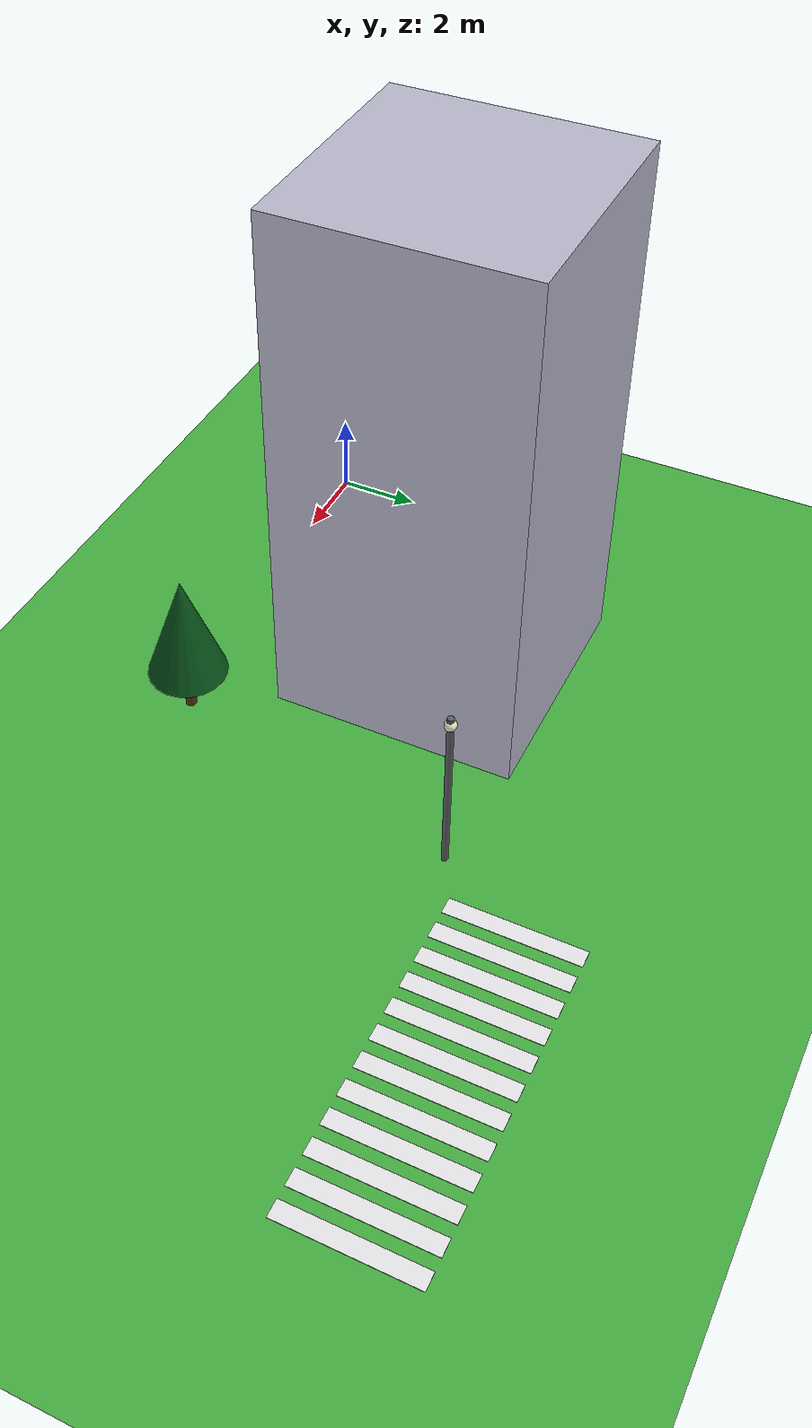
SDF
<sdf version="1.10">
 <world name="city_second">
  <model name="ground_plane">
   <static>true</static>
   <link name="link">
    <collision name="collision">
     <geometry><plane><normal>0 0 1</normal><size>300 300</size></plane></geometry>
    </collision>
    <visual name="visual">
     <geometry><plane><normal>0 0 1</normal><size>300 300</size></plane></geometry>
     <material>
      <ambient>0.280000001 0.689999998 0.25999999 1</ambient>
      <diffuse>0.280000001 0.689999998 0.25999999 1</diffuse>
      <specular>0.0299999993 0.0299999993 0.0299999993 1</specular>
     </material>
    </visual>
    <inertial>
     <mass>1</mass>
     <inertia><ixx>1</ixx><ixy>0</ixy><ixz>0</ixz><iyy>1</iyy><iyz>0</iyz><izz>1</izz></inertia>
    </inertial>
   </link>
  </model>
  <model name="house_2_2">
   <static>true</static>
   <pose>5.2000000000000002 5.2999999999999998 6.5 0 0 0</pose>
   <link name="link">
    <collision name="collision"><geometry><box><size>6 6 13</size></box></geometry></collision>
    <visual name="visual">
     <geometry><box><size>6 6 13</size></box></geometry>
     <material>
      <ambient>0.720000029 0.720000029 0.800000012 1</ambient>
      <diffuse>0.720000029 0.720000029 0.800000012 1</diffuse>
      <specular>0.0299999993 0.0299999993 0.0299999993 1</specular>
     </material>
    </visual>
    <inertial>
     <mass>1</mass>
     <inertia><ixx>1</ixx><ixy>0</ixy><ixz>0</ixz><iyy>1</iyy><iyz>0</iyz><izz>1</izz></inertia>
    </inertial>
   </link>
  </model>
  <model name="crosswalk_h_1_1_south_6">
   <static>true</static>
   <pose>15.980700000000001 10.0922 0.017000000000000001 0 0 0</pose>
   <link name="stripe_1">
    <collision name="collision">
     <geometry><box><size>0.41999999999999998 3.2000000000000002 0.01</size></box></geometry>
    </collision>
    <visual name="visual">
     <geometry><box><size>0.41999999999999998 3.2000000000000002 0.01</size></box></geometry>
     <material>
      <ambient>0.920000017 0.920000017 0.930000007 1</ambient>
      <diffuse>0.920000017 0.920000017 0.930000007 1</diffuse>
      <specular>0.0299999993 0.0299999993 0.0299999993 1</specular>
     </material>
    </visual>
    <pose>-3.8500000000000001 0 0 0 0 0</pose>
    <inertial>
     <mass>1</mass>
     <inertia><ixx>1</ixx><ixy>0</ixy><ixz>0</ixz><iyy>1</iyy><iyz>0</iyz><izz>1</izz></inertia>
    </inertial>
   </link>
   <link name="stripe_2">
    <collision name="collision">
     <geometry><box><size>0.41999999999999998 3.2000000000000002 0.01</size></box></geometry>
    </collision>
    <visual name="visual">
     <geometry><box><size>0.41999999999999998 3.2000000000000002 0.01</size></box></geometry>
     <material>
      <ambient>0.920000017 0.920000017 0.930000007 1</ambient>
      <diffuse>0.920000017 0.920000017 0.930000007 1</diffuse>
      <specular>0.0299999993 0.0299999993 0.0299999993 1</specular>
     </material>
    </visual>
    <pose>-3.1500000000000004 0 0 0 0 0</pose>
    <inertial>
     <mass>1</mass>
     <inertia><ixx>1</ixx><ixy>0</ixy><ixz>0</ixz><iyy>1</iyy><iyz>0</iyz><izz>1</izz></inertia>
    </inertial>
   </link>
   <link name="stripe_3">
    <collision name="collision">
     <geometry><box><size>0.41999999999999998 3.2000000000000002 0.01</size></box></geometry>
    </collision>
    <visual name="visual">
     <geometry><box><size>0.41999999999999998 3.2000000000000002 0.01</size></box></geometry>
     <material>
      <ambient>0.920000017 0.920000017 0.930000007 1</ambient>
      <diffuse>0.920000017 0.920000017 0.930000007 1</diffuse>
      <specular>0.0299999993 0.0299999993 0.0299999993 1</specular>
     </material>
    </visual>
    <pose>-2.4500000000000011 0 0 0 0 0</pose>
    <inertial>
     <mass>1</mass>
     <inertia><ixx>1</ixx><ixy>0</ixy><ixz>0</ixz><iyy>1</iyy><iyz>0</iyz><izz>1</izz></inertia>
    </inertial>
   </link>
   <link name="stripe_4">
    <collision name="collision">
     <geometry><box><size>0.41999999999999998 3.2000000000000002 0.01</size></box></geometry>
    </collision>
    <visual name="visual">
     <geometry><box><size>0.41999999999999998 3.2000000000000002 0.01</size></box></geometry>
     <material>
      <ambient>0.920000017 0.920000017 0.930000007 1</ambient>
      <diffuse>0.920000017 0.920000017 0.930000007 1</diffuse>
      <specular>0.0299999993 0.0299999993 0.0299999993 1</specular>
     </material>
    </visual>
    <pose>-1.75 0 0 0 0 0</pose>
    <inertial>
     <mass>1</mass>
     <inertia><ixx>1</ixx><ixy>0</ixy><ixz>0</ixz><iyy>1</iyy><iyz>0</iyz><izz>1</izz></inertia>
    </inertial>
   </link>
   <link name="stripe_5">
    <collision name="collision">
     <geometry><box><size>0.41999999999999998 3.2000000000000002 0.01</size></box></geometry>
    </collision>
    <visual name="visual">
     <geometry><box><size>0.41999999999999998 3.2000000000000002 0.01</size></box></geometry>
     <material>
      <ambient>0.920000017 0.920000017 0.930000007 1</ambient>
      <diffuse>0.920000017 0.920000017 0.930000007 1</diffuse>
      <specular>0.0299999993 0.0299999993 0.0299999993 1</specular>
     </material>
    </visual>
    <pose>-1.0500000000000007 0 0 0 0 0</pose>
    <inertial>
     <mass>1</mass>
     <inertia><ixx>1</ixx><ixy>0</ixy><ixz>0</ixz><iyy>1</iyy><iyz>0</iyz><izz>1</izz></inertia>
    </inertial>
   </link>
   <link name="stripe_6">
    <collision name="collision">
     <geometry><box><size>0.41999999999999998 3.2000000000000002 0.01</size></box></geometry>
    </collision>
    <visual name="visual">
     <geometry><box><size>0.41999999999999998 3.2000000000000002 0.01</size></box></geometry>
     <material>
      <ambient>0.920000017 0.920000017 0.930000007 1</ambient>
      <diffuse>0.920000017 0.920000017 0.930000007 1</diffuse>
      <specular>0.0299999993 0.0299999993 0.0299999993 1</specular>
     </material>
    </visual>
    <pose>-0.34999999999999964 0 0 0 0 0</pose>
    <inertial>
     <mass>1</mass>
     <inertia><ixx>1</ixx><ixy>0</ixy><ixz>0</ixz><iyy>1</iyy><iyz>0</iyz><izz>1</izz></inertia>
    </inertial>
   </link>
   <link name="stripe_7">
    <collision name="collision">
     <geometry><box><size>0.41999999999999998 3.2000000000000002 0.01</size></box></geometry>
    </collision>
    <visual name="visual">
     <geometry><box><size>0.41999999999999998 3.2000000000000002 0.01</size></box></geometry>
     <material>
      <ambient>0.920000017 0.920000017 0.930000007 1</ambient>
      <diffuse>0.920000017 0.920000017 0.930000007 1</diffuse>
      <specular>0.0299999993 0.0299999993 0.0299999993 1</specular>
     </material>
    </visual>
    <pose>0.34999999999999964 0 0 0 0 0</pose>
    <inertial>
     <mass>1</mass>
     <inertia><ixx>1</ixx><ixy>0</ixy><ixz>0</ixz><iyy>1</iyy><iyz>0</iyz><izz>1</izz></inertia>
    </inertial>
   </link>
   <link name="stripe_8">
    <collision name="collision">
     <geometry><box><size>0.41999999999999998 3.2000000000000002 0.01</size></box></geometry>
    </collision>
    <visual name="visual">
     <geometry><box><size>0.41999999999999998 3.2000000000000002 0.01</size></box></geometry>
     <material>
      <ambient>0.920000017 0.920000017 0.930000007 1</ambient>
      <diffuse>0.920000017 0.920000017 0.930000007 1</diffuse>
      <specular>0.0299999993 0.0299999993 0.0299999993 1</specular>
     </material>
    </visual>
    <pose>1.0499999999999989 0 0 0 0 0</pose>
    <inertial>
     <mass>1</mass>
     <inertia><ixx>1</ixx><ixy>0</ixy><ixz>0</ixz><iyy>1</iyy><iyz>0</iyz><izz>1</izz></inertia>
    </inertial>
   </link>
   <link name="stripe_9">
    <collision name="collision">
     <geometry><box><size>0.41999999999999998 3.2000000000000002 0.01</size></box></geometry>
    </collision>
    <visual name="visual">
     <geometry><box><size>0.41999999999999998 3.2000000000000002 0.01</size></box></geometry>
     <material>
      <ambient>0.920000017 0.920000017 0.930000007 1</ambient>
      <diffuse>0.920000017 0.920000017 0.930000007 1</diffuse>
      <specular>0.0299999993 0.0299999993 0.0299999993 1</specular>
     </material>
    </visual>
    <pose>1.7499999999999982 0 0 0 0 0</pose>
    <inertial>
     <mass>1</mass>
     <inertia><ixx>1</ixx><ixy>0</ixy><ixz>0</ixz><iyy>1</iyy><iyz>0</iyz><izz>1</izz></inertia>
    </inertial>
   </link>
   <link name="stripe_10">
    <collision name="collision">
     <geometry><box><size>0.41999999999999998 3.2000000000000002 0.01</size></box></geometry>
    </collision>
    <visual name="visual">
     <geometry><box><size>0.41999999999999998 3.2000000000000002 0.01</size></box></geometry>
     <material>
      <ambient>0.920000017 0.920000017 0.930000007 1</ambient>
      <diffuse>0.920000017 0.920000017 0.930000007 1</diffuse>
      <specular>0.0299999993 0.0299999993 0.0299999993 1</specular>
     </material>
    </visual>
    <pose>2.4500000000000011 0 0 0 0 0</pose>
    <inertial>
     <mass>1</mass>
     <inertia><ixx>1</ixx><ixy>0</ixy><ixz>0</ixz><iyy>1</iyy><iyz>0</iyz><izz>1</izz></inertia>
    </inertial>
   </link>
   <link name="stripe_11">
    <collision name="collision">
     <geometry><box><size>0.41999999999999998 3.2000000000000002 0.01</size></box></geometry>
    </collision>
    <visual name="visual">
     <geometry><box><size>0.41999999999999998 3.2000000000000002 0.01</size></box></geometry>
     <material>
      <ambient>0.920000017 0.920000017 0.930000007 1</ambient>
      <diffuse>0.920000017 0.920000017 0.930000007 1</diffuse>
      <specular>0.0299999993 0.0299999993 0.0299999993 1</specular>
     </material>
    </visual>
    <pose>3.1500000000000004 0 0 0 0 0</pose>
    <inertial>
     <mass>1</mass>
     <inertia><ixx>1</ixx><ixy>0</ixy><ixz>0</ixz><iyy>1</iyy><iyz>0</iyz><izz>1</izz></inertia>
    </inertial>
   </link>
   <link name="stripe_12">
    <collision name="collision">
     <geometry><box><size>0.41999999999999998 3.2000000000000002 0.01</size></box></geometry>
    </collision>
    <visual name="visual">
     <geometry><box><size>0.41999999999999998 3.2000000000000002 0.01</size></box></geometry>
     <material>
      <ambient>0.920000017 0.920000017 0.930000007 1</ambient>
      <diffuse>0.920000017 0.920000017 0.930000007 1</diffuse>
      <specular>0.0299999993 0.0299999993 0.0299999993 1</specular>
     </material>
    </visual>
    <pose>3.8499999999999996 0 0 0 0 0</pose>
    <inertial>
     <mass>1</mass>
     <inertia><ixx>1</ixx><ixy>0</ixy><ixz>0</ixz><iyy>1</iyy><iyz>0</iyz><izz>1</izz></inertia>
    </inertial>
   </link>
  </model>
  <model name="lamp_1_2_10">
   <static>true</static>
   <pose>10.9572 7.9459400000000002 2.2000000000000002 0 0 0</pose>
   <link name="link">
    <collision name="collision">
     <geometry>
      <cylinder><radius>0.080000000000000002</radius><length>4.4000000000000004</length></cylinder>
     </geometry>
    </collision>
    <visual name="pole">
     <geometry>
      <cylinder><radius>0.080000000000000002</radius><length>4.4000000000000004</length></cylinder>
     </geometry>
     <material>
      <ambient>0.349999994 0.360000014 0.379999995 1</ambient>
      <diffuse>0.349999994 0.360000014 0.379999995 1</diffuse>
      <specular>0.0299999993 0.0299999993 0.0299999993 1</specular>
     </material>
    </visual>
    <visual name="lamp_head">
     <pose>0 0 2 0 0 0</pose>
     <geometry><sphere><radius>0.14000000000000001</radius></sphere></geometry>
     <material>
      <ambient>0.959999979 0.939999998 0.779999971 1</ambient>
      <diffuse>0.959999979 0.939999998 0.779999971 1</diffuse>
      <specular>0.0299999993 0.0299999993 0.0299999993 1</specular>
     </material>
    </visual>
    <inertial>
     <mass>1</mass>
     <inertia><ixx>1</ixx><ixy>0</ixy><ixz>0</ixz><iyy>1</iyy><iyz>0</iyz><izz>1</izz></inertia>
    </inertial>
   </link>
  </model>
  <model name="Pine Tree_12">
   <static>true</static>
   <pose>9.2489500000000007 0.51215299999999997 0 0 0 0</pose>
   <link name="link">
    <collision name="footprint">
     <pose>0 0 0.050000000000000003 0 0 0</pose>
     <geometry>
      <cylinder><radius>0.65000000000000002</radius><length>0.10000000000000001</length></cylinder>
     </geometry>
    </collision>
    <visual name="trunk">
     <pose>0 0 0.90000000000000002 0 0 0</pose>
     <geometry><cylinder><radius>0.13</radius><length>1.8</length></cylinder></geometry>
     <material>
      <ambient>0.360000014 0.200000003 0.100000001 1</ambient>
      <diffuse>0.360000014 0.200000003 0.100000001 1</diffuse>
      <specular>0.119999997 0.119999997 0.119999997 1</specular>
      <emissive>0 0 0 1</emissive>
     </material>
    </visual>
    <visual name="crown">
     <pose>0 0 2.4500000000000002 0 0 0</pose>
     <geometry><cone><radius>0.94999999999999996</radius><length>2.7000000000000002</length></cone></geometry>
     <material>
      <ambient>0.0299999993 0.340000004 0.109999999 1</ambient>
      <diffuse>0.0299999993 0.340000004 0.109999999 1</diffuse>
      <specular>0.119999997 0.119999997 0.119999997 1</specular>
      <emissive>0 0 0 1</emissive>
     </material>
    </visual>
    <inertial>
     <mass>1</mass>
     <inertia><ixx>1</ixx><ixy>0</ixy><ixz>0</ixz><iyy>1</iyy><iyz>0</iyz><izz>1</izz></inertia>
    </inertial>
   </link>
  </model>
 </world>
</sdf>
